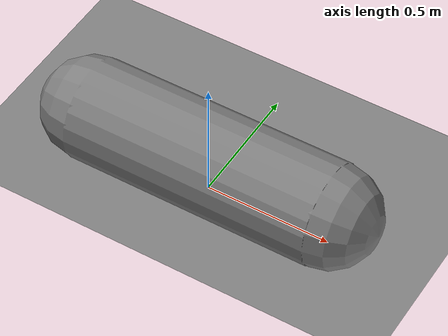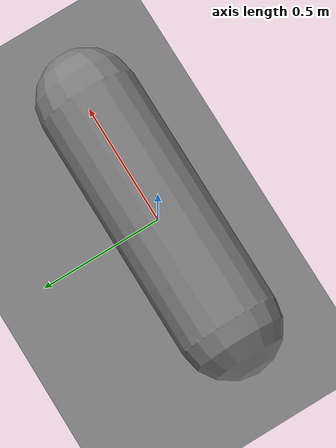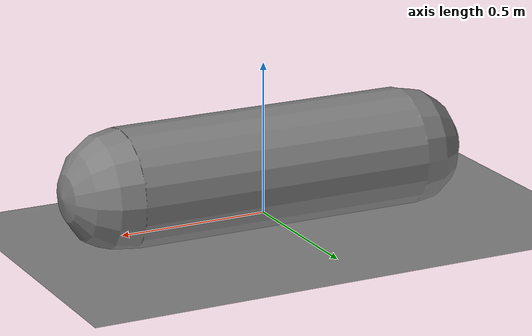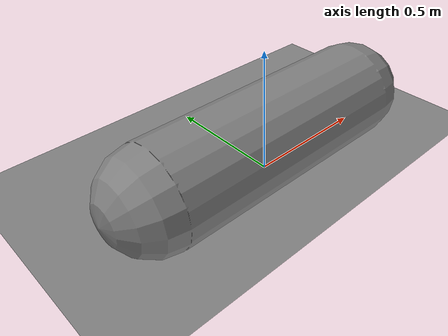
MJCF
<mujoco model="capsule_plane_horizontal">
            <option gravity="0 0 0" timestep="0.001"/>
            <worldbody>
                <geom name="floor" type="plane" size="10 10 0.1"/>
                <body name="cap" pos="0 0 0.15" euler="0 90 0">
                    <joint type="free"/>
                    <geom type="capsule" size="0.2 0.5"/>
                </body>
            </worldbody>
        </mujoco>
